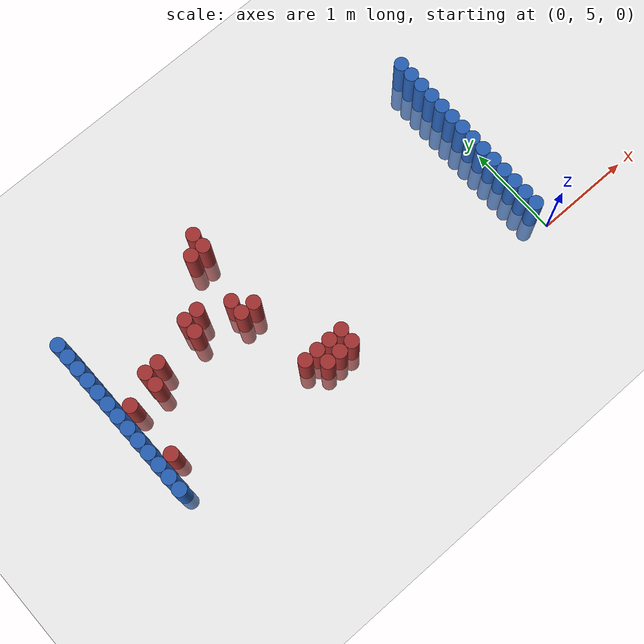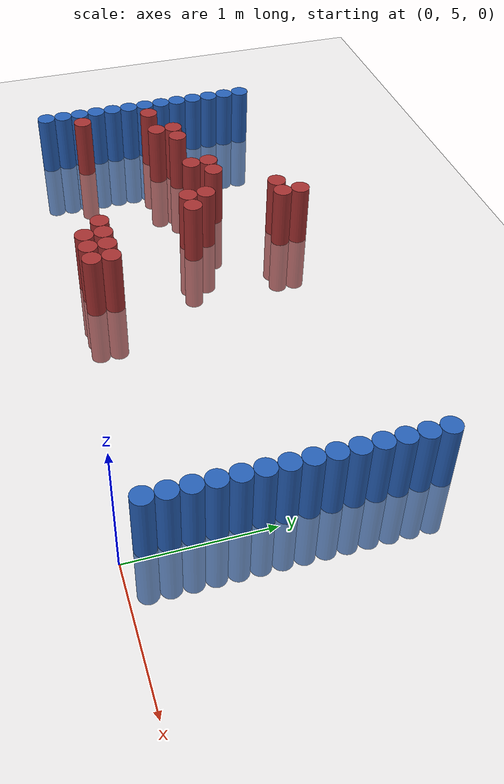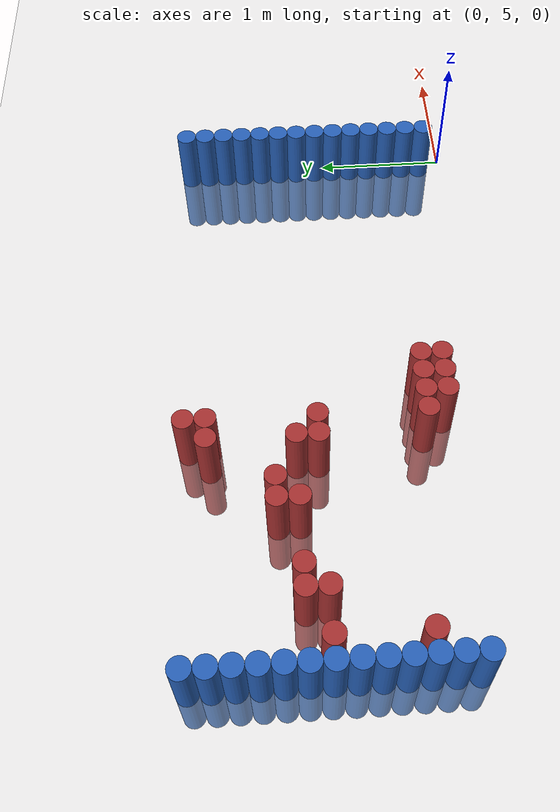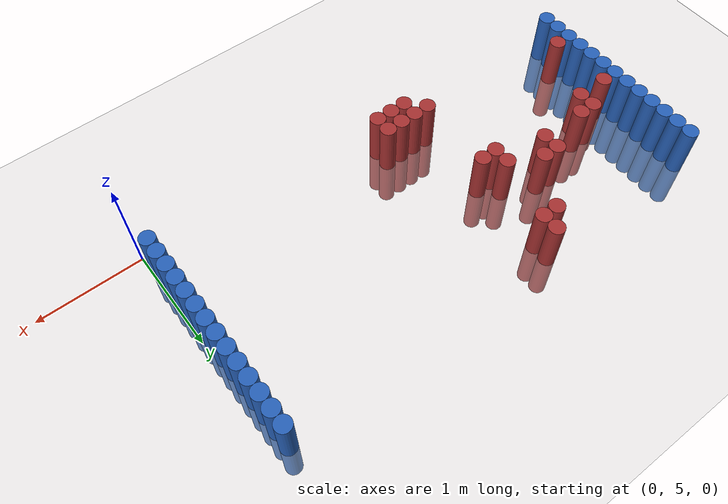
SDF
<sdf version="1.6">
 <world name="world_107">
  <model name="ground_plane">
   <static>1</static>
   <link name="link">
    <collision name="collision">
     <geometry><plane><normal>0 0 1</normal><size>100 100</size></plane></geometry>
     <surface><friction><ode><mu>100</mu><mu2>50</mu2></ode></friction></surface>
    </collision>
    <visual name="visual">
     <cast_shadows>0</cast_shadows>
     <geometry><plane><normal>0 0 1</normal><size>100 100</size></plane></geometry>
     <material>
      <script><uri>file://media/materials/scripts/gazebo.material</uri><name>Gazebo/Grey</name></script>
     </material>
    </visual>
   </link>
  </model>
  <model name="unit_cylinder_97">
   <static>1</static>
   <pose>-4.425000 5.325000 0.000000 0.000000 0.000000 0.000000</pose>
   <link name="link">
    <inertial>
     <mass>1</mass>
     <inertia><ixx>0.145833</ixx><ixy>0</ixy><ixz>0</ixz><iyy>0.145833</iyy><iyz>0</iyz><izz>0.125</izz></inertia>
    </inertial>
    <collision name="collision">
     <geometry><cylinder><radius>0.075000</radius><length>1</length></cylinder></geometry>
    </collision>
    <visual name="visual">
     <geometry><cylinder><radius>0.075000</radius><length>1</length></cylinder></geometry>
     <material>
      <ambient>0.152000 0.379000 0.720000 1</ambient>
      <diffuse>0.152000 0.379000 0.720000 1</diffuse>
     </material>
     <material>
      <script><name>Gazebo/Grey</name><uri>file://media/materials/scripts/gazebo.material</uri></script>
     </material>
    </visual>
   </link>
  </model>
  <model name="unit_cylinder_98">
   <static>1</static>
   <pose>-4.425000 5.475000 0.000000 0.000000 0.000000 0.000000</pose>
   <link name="link">
    <inertial>
     <mass>1</mass>
     <inertia><ixx>0.145833</ixx><ixy>0</ixy><ixz>0</ixz><iyy>0.145833</iyy><iyz>0</iyz><izz>0.125</izz></inertia>
    </inertial>
    <collision name="collision">
     <geometry><cylinder><radius>0.075000</radius><length>1</length></cylinder></geometry>
    </collision>
    <visual name="visual">
     <geometry><cylinder><radius>0.075000</radius><length>1</length></cylinder></geometry>
     <material>
      <ambient>0.152000 0.379000 0.720000 1</ambient>
      <diffuse>0.152000 0.379000 0.720000 1</diffuse>
     </material>
     <material>
      <script><name>Gazebo/Grey</name><uri>file://media/materials/scripts/gazebo.material</uri></script>
     </material>
    </visual>
   </link>
  </model>
  <model name="unit_cylinder_99">
   <static>1</static>
   <pose>-4.425000 5.625000 0.000000 0.000000 0.000000 0.000000</pose>
   <link name="link">
    <inertial>
     <mass>1</mass>
     <inertia><ixx>0.145833</ixx><ixy>0</ixy><ixz>0</ixz><iyy>0.145833</iyy><iyz>0</iyz><izz>0.125</izz></inertia>
    </inertial>
    <collision name="collision">
     <geometry><cylinder><radius>0.075000</radius><length>1</length></cylinder></geometry>
    </collision>
    <visual name="visual">
     <geometry><cylinder><radius>0.075000</radius><length>1</length></cylinder></geometry>
     <material>
      <ambient>0.152000 0.379000 0.720000 1</ambient>
      <diffuse>0.152000 0.379000 0.720000 1</diffuse>
     </material>
     <material>
      <script><name>Gazebo/Grey</name><uri>file://media/materials/scripts/gazebo.material</uri></script>
     </material>
    </visual>
   </link>
  </model>
  <model name="unit_cylinder_100">
   <static>1</static>
   <pose>-4.425000 5.775000 0.000000 0.000000 0.000000 0.000000</pose>
   <link name="link">
    <inertial>
     <mass>1</mass>
     <inertia><ixx>0.145833</ixx><ixy>0</ixy><ixz>0</ixz><iyy>0.145833</iyy><iyz>0</iyz><izz>0.125</izz></inertia>
    </inertial>
    <collision name="collision">
     <geometry><cylinder><radius>0.075000</radius><length>1</length></cylinder></geometry>
    </collision>
    <visual name="visual">
     <geometry><cylinder><radius>0.075000</radius><length>1</length></cylinder></geometry>
     <material>
      <ambient>0.152000 0.379000 0.720000 1</ambient>
      <diffuse>0.152000 0.379000 0.720000 1</diffuse>
     </material>
     <material>
      <script><name>Gazebo/Grey</name><uri>file://media/materials/scripts/gazebo.material</uri></script>
     </material>
    </visual>
   </link>
  </model>
  <model name="unit_cylinder_101">
   <static>1</static>
   <pose>-4.425000 5.925000 0.000000 0.000000 0.000000 0.000000</pose>
   <link name="link">
    <inertial>
     <mass>1</mass>
     <inertia><ixx>0.145833</ixx><ixy>0</ixy><ixz>0</ixz><iyy>0.145833</iyy><iyz>0</iyz><izz>0.125</izz></inertia>
    </inertial>
    <collision name="collision">
     <geometry><cylinder><radius>0.075000</radius><length>1</length></cylinder></geometry>
    </collision>
    <visual name="visual">
     <geometry><cylinder><radius>0.075000</radius><length>1</length></cylinder></geometry>
     <material>
      <ambient>0.152000 0.379000 0.720000 1</ambient>
      <diffuse>0.152000 0.379000 0.720000 1</diffuse>
     </material>
     <material>
      <script><name>Gazebo/Grey</name><uri>file://media/materials/scripts/gazebo.material</uri></script>
     </material>
    </visual>
   </link>
  </model>
  <model name="unit_cylinder_102">
   <static>1</static>
   <pose>-4.425000 6.075000 0.000000 0.000000 0.000000 0.000000</pose>
   <link name="link">
    <inertial>
     <mass>1</mass>
     <inertia><ixx>0.145833</ixx><ixy>0</ixy><ixz>0</ixz><iyy>0.145833</iyy><iyz>0</iyz><izz>0.125</izz></inertia>
    </inertial>
    <collision name="collision">
     <geometry><cylinder><radius>0.075000</radius><length>1</length></cylinder></geometry>
    </collision>
    <visual name="visual">
     <geometry><cylinder><radius>0.075000</radius><length>1</length></cylinder></geometry>
     <material>
      <ambient>0.152000 0.379000 0.720000 1</ambient>
      <diffuse>0.152000 0.379000 0.720000 1</diffuse>
     </material>
     <material>
      <script><name>Gazebo/Grey</name><uri>file://media/materials/scripts/gazebo.material</uri></script>
     </material>
    </visual>
   </link>
  </model>
  <model name="unit_cylinder_103">
   <static>1</static>
   <pose>-4.425000 6.225000 0.000000 0.000000 0.000000 0.000000</pose>
   <link name="link">
    <inertial>
     <mass>1</mass>
     <inertia><ixx>0.145833</ixx><ixy>0</ixy><ixz>0</ixz><iyy>0.145833</iyy><iyz>0</iyz><izz>0.125</izz></inertia>
    </inertial>
    <collision name="collision">
     <geometry><cylinder><radius>0.075000</radius><length>1</length></cylinder></geometry>
    </collision>
    <visual name="visual">
     <geometry><cylinder><radius>0.075000</radius><length>1</length></cylinder></geometry>
     <material>
      <ambient>0.152000 0.379000 0.720000 1</ambient>
      <diffuse>0.152000 0.379000 0.720000 1</diffuse>
     </material>
     <material>
      <script><name>Gazebo/Grey</name><uri>file://media/materials/scripts/gazebo.material</uri></script>
     </material>
    </visual>
   </link>
  </model>
  <model name="unit_cylinder_104">
   <static>1</static>
   <pose>-4.425000 6.375000 0.000000 0.000000 0.000000 0.000000</pose>
   <link name="link">
    <inertial>
     <mass>1</mass>
     <inertia><ixx>0.145833</ixx><ixy>0</ixy><ixz>0</ixz><iyy>0.145833</iyy><iyz>0</iyz><izz>0.125</izz></inertia>
    </inertial>
    <collision name="collision">
     <geometry><cylinder><radius>0.075000</radius><length>1</length></cylinder></geometry>
    </collision>
    <visual name="visual">
     <geometry><cylinder><radius>0.075000</radius><length>1</length></cylinder></geometry>
     <material>
      <ambient>0.152000 0.379000 0.720000 1</ambient>
      <diffuse>0.152000 0.379000 0.720000 1</diffuse>
     </material>
     <material>
      <script><name>Gazebo/Grey</name><uri>file://media/materials/scripts/gazebo.material</uri></script>
     </material>
    </visual>
   </link>
  </model>
  <model name="unit_cylinder_105">
   <static>1</static>
   <pose>-4.425000 6.525000 0.000000 0.000000 0.000000 0.000000</pose>
   <link name="link">
    <inertial>
     <mass>1</mass>
     <inertia><ixx>0.145833</ixx><ixy>0</ixy><ixz>0</ixz><iyy>0.145833</iyy><iyz>0</iyz><izz>0.125</izz></inertia>
    </inertial>
    <collision name="collision">
     <geometry><cylinder><radius>0.075000</radius><length>1</length></cylinder></geometry>
    </collision>
    <visual name="visual">
     <geometry><cylinder><radius>0.075000</radius><length>1</length></cylinder></geometry>
     <material>
      <ambient>0.152000 0.379000 0.720000 1</ambient>
      <diffuse>0.152000 0.379000 0.720000 1</diffuse>
     </material>
     <material>
      <script><name>Gazebo/Grey</name><uri>file://media/materials/scripts/gazebo.material</uri></script>
     </material>
    </visual>
   </link>
  </model>
  <model name="unit_cylinder_106">
   <static>1</static>
   <pose>-4.425000 6.675000 0.000000 0.000000 0.000000 0.000000</pose>
   <link name="link">
    <inertial>
     <mass>1</mass>
     <inertia><ixx>0.145833</ixx><ixy>0</ixy><ixz>0</ixz><iyy>0.145833</iyy><iyz>0</iyz><izz>0.125</izz></inertia>
    </inertial>
    <collision name="collision">
     <geometry><cylinder><radius>0.075000</radius><length>1</length></cylinder></geometry>
    </collision>
    <visual name="visual">
     <geometry><cylinder><radius>0.075000</radius><length>1</length></cylinder></geometry>
     <material>
      <ambient>0.152000 0.379000 0.720000 1</ambient>
      <diffuse>0.152000 0.379000 0.720000 1</diffuse>
     </material>
     <material>
      <script><name>Gazebo/Grey</name><uri>file://media/materials/scripts/gazebo.material</uri></script>
     </material>
    </visual>
   </link>
  </model>
  <model name="unit_cylinder_107">
   <static>1</static>
   <pose>-4.425000 6.825000 0.000000 0.000000 0.000000 0.000000</pose>
   <link name="link">
    <inertial>
     <mass>1</mass>
     <inertia><ixx>0.145833</ixx><ixy>0</ixy><ixz>0</ixz><iyy>0.145833</iyy><iyz>0</iyz><izz>0.125</izz></inertia>
    </inertial>
    <collision name="collision">
     <geometry><cylinder><radius>0.075000</radius><length>1</length></cylinder></geometry>
    </collision>
    <visual name="visual">
     <geometry><cylinder><radius>0.075000</radius><length>1</length></cylinder></geometry>
     <material>
      <ambient>0.152000 0.379000 0.720000 1</ambient>
      <diffuse>0.152000 0.379000 0.720000 1</diffuse>
     </material>
     <material>
      <script><name>Gazebo/Grey</name><uri>file://media/materials/scripts/gazebo.material</uri></script>
     </material>
    </visual>
   </link>
  </model>
  <model name="unit_cylinder_108">
   <static>1</static>
   <pose>-4.425000 6.975000 0.000000 0.000000 0.000000 0.000000</pose>
   <link name="link">
    <inertial>
     <mass>1</mass>
     <inertia><ixx>0.145833</ixx><ixy>0</ixy><ixz>0</ixz><iyy>0.145833</iyy><iyz>0</iyz><izz>0.125</izz></inertia>
    </inertial>
    <collision name="collision">
     <geometry><cylinder><radius>0.075000</radius><length>1</length></cylinder></geometry>
    </collision>
    <visual name="visual">
     <geometry><cylinder><radius>0.075000</radius><length>1</length></cylinder></geometry>
     <material>
      <ambient>0.152000 0.379000 0.720000 1</ambient>
      <diffuse>0.152000 0.379000 0.720000 1</diffuse>
     </material>
     <material>
      <script><name>Gazebo/Grey</name><uri>file://media/materials/scripts/gazebo.material</uri></script>
     </material>
    </visual>
   </link>
  </model>
  <model name="unit_cylinder_109">
   <static>1</static>
   <pose>-4.425000 7.125000 0.000000 0.000000 0.000000 0.000000</pose>
   <link name="link">
    <inertial>
     <mass>1</mass>
     <inertia><ixx>0.145833</ixx><ixy>0</ixy><ixz>0</ixz><iyy>0.145833</iyy><iyz>0</iyz><izz>0.125</izz></inertia>
    </inertial>
    <collision name="collision">
     <geometry><cylinder><radius>0.075000</radius><length>1</length></cylinder></geometry>
    </collision>
    <visual name="visual">
     <geometry><cylinder><radius>0.075000</radius><length>1</length></cylinder></geometry>
     <material>
      <ambient>0.152000 0.379000 0.720000 1</ambient>
      <diffuse>0.152000 0.379000 0.720000 1</diffuse>
     </material>
     <material>
      <script><name>Gazebo/Grey</name><uri>file://media/materials/scripts/gazebo.material</uri></script>
     </material>
    </visual>
   </link>
  </model>
  <model name="unit_cylinder_126">
   <static>1</static>
   <pose>-4.275000 5.625000 0.000000 0.000000 0.000000 0.000000</pose>
   <link name="link">
    <inertial>
     <mass>1</mass>
     <inertia><ixx>0.145833</ixx><ixy>0</ixy><ixz>0</ixz><iyy>0.145833</iyy><iyz>0</iyz><izz>0.125</izz></inertia>
    </inertial>
    <collision name="collision">
     <geometry><cylinder><radius>0.075000</radius><length>1</length></cylinder></geometry>
    </collision>
    <visual name="visual">
     <geometry><cylinder><radius>0.075000</radius><length>1</length></cylinder></geometry>
     <material>
      <ambient>0.648000 0.192000 0.192000 1</ambient>
      <diffuse>0.648000 0.192000 0.192000 1</diffuse>
     </material>
     <material>
      <script><name>Gazebo/Grey</name><uri>file://media/materials/scripts/gazebo.material</uri></script>
     </material>
    </visual>
   </link>
  </model>
  <model name="unit_cylinder_127">
   <static>1</static>
   <pose>-4.275000 6.225000 0.000000 0.000000 0.000000 0.000000</pose>
   <link name="link">
    <inertial>
     <mass>1</mass>
     <inertia><ixx>0.145833</ixx><ixy>0</ixy><ixz>0</ixz><iyy>0.145833</iyy><iyz>0</iyz><izz>0.125</izz></inertia>
    </inertial>
    <collision name="collision">
     <geometry><cylinder><radius>0.075000</radius><length>1</length></cylinder></geometry>
    </collision>
    <visual name="visual">
     <geometry><cylinder><radius>0.075000</radius><length>1</length></cylinder></geometry>
     <material>
      <ambient>0.648000 0.192000 0.192000 1</ambient>
      <diffuse>0.648000 0.192000 0.192000 1</diffuse>
     </material>
     <material>
      <script><name>Gazebo/Grey</name><uri>file://media/materials/scripts/gazebo.material</uri></script>
     </material>
    </visual>
   </link>
  </model>
  <model name="unit_cylinder_132">
   <static>1</static>
   <pose>-3.975000 6.225000 0.000000 0.000000 0.000000 0.000000</pose>
   <link name="link">
    <inertial>
     <mass>1</mass>
     <inertia><ixx>0.145833</ixx><ixy>0</ixy><ixz>0</ixz><iyy>0.145833</iyy><iyz>0</iyz><izz>0.125</izz></inertia>
    </inertial>
    <collision name="collision">
     <geometry><cylinder><radius>0.075000</radius><length>1</length></cylinder></geometry>
    </collision>
    <visual name="visual">
     <geometry><cylinder><radius>0.075000</radius><length>1</length></cylinder></geometry>
     <material>
      <ambient>0.648000 0.192000 0.192000 1</ambient>
      <diffuse>0.648000 0.192000 0.192000 1</diffuse>
     </material>
     <material>
      <script><name>Gazebo/Grey</name><uri>file://media/materials/scripts/gazebo.material</uri></script>
     </material>
    </visual>
   </link>
  </model>
  <model name="unit_cylinder_133">
   <static>1</static>
   <pose>-3.975000 6.375000 0.000000 0.000000 0.000000 0.000000</pose>
   <link name="link">
    <inertial>
     <mass>1</mass>
     <inertia><ixx>0.145833</ixx><ixy>0</ixy><ixz>0</ixz><iyy>0.145833</iyy><iyz>0</iyz><izz>0.125</izz></inertia>
    </inertial>
    <collision name="collision">
     <geometry><cylinder><radius>0.075000</radius><length>1</length></cylinder></geometry>
    </collision>
    <visual name="visual">
     <geometry><cylinder><radius>0.075000</radius><length>1</length></cylinder></geometry>
     <material>
      <ambient>0.648000 0.192000 0.192000 1</ambient>
      <diffuse>0.648000 0.192000 0.192000 1</diffuse>
     </material>
     <material>
      <script><name>Gazebo/Grey</name><uri>file://media/materials/scripts/gazebo.material</uri></script>
     </material>
    </visual>
   </link>
  </model>
  <model name="unit_cylinder_135">
   <static>1</static>
   <pose>-3.825000 6.375000 0.000000 0.000000 0.000000 0.000000</pose>
   <link name="link">
    <inertial>
     <mass>1</mass>
     <inertia><ixx>0.145833</ixx><ixy>0</ixy><ixz>0</ixz><iyy>0.145833</iyy><iyz>0</iyz><izz>0.125</izz></inertia>
    </inertial>
    <collision name="collision">
     <geometry><cylinder><radius>0.075000</radius><length>1</length></cylinder></geometry>
    </collision>
    <visual name="visual">
     <geometry><cylinder><radius>0.075000</radius><length>1</length></cylinder></geometry>
     <material>
      <ambient>0.648000 0.192000 0.192000 1</ambient>
      <diffuse>0.648000 0.192000 0.192000 1</diffuse>
     </material>
     <material>
      <script><name>Gazebo/Grey</name><uri>file://media/materials/scripts/gazebo.material</uri></script>
     </material>
    </visual>
   </link>
  </model>
  <model name="unit_cylinder_136">
   <static>1</static>
   <pose>-3.375000 6.375000 0.000000 0.000000 0.000000 0.000000</pose>
   <link name="link">
    <inertial>
     <mass>1</mass>
     <inertia><ixx>0.145833</ixx><ixy>0</ixy><ixz>0</ixz><iyy>0.145833</iyy><iyz>0</iyz><izz>0.125</izz></inertia>
    </inertial>
    <collision name="collision">
     <geometry><cylinder><radius>0.075000</radius><length>1</length></cylinder></geometry>
    </collision>
    <visual name="visual">
     <geometry><cylinder><radius>0.075000</radius><length>1</length></cylinder></geometry>
     <material>
      <ambient>0.648000 0.192000 0.192000 1</ambient>
      <diffuse>0.648000 0.192000 0.192000 1</diffuse>
     </material>
     <material>
      <script><name>Gazebo/Grey</name><uri>file://media/materials/scripts/gazebo.material</uri></script>
     </material>
    </visual>
   </link>
  </model>
  <model name="unit_cylinder_137">
   <static>1</static>
   <pose>-3.375000 6.525000 0.000000 0.000000 0.000000 0.000000</pose>
   <link name="link">
    <inertial>
     <mass>1</mass>
     <inertia><ixx>0.145833</ixx><ixy>0</ixy><ixz>0</ixz><iyy>0.145833</iyy><iyz>0</iyz><izz>0.125</izz></inertia>
    </inertial>
    <collision name="collision">
     <geometry><cylinder><radius>0.075000</radius><length>1</length></cylinder></geometry>
    </collision>
    <visual name="visual">
     <geometry><cylinder><radius>0.075000</radius><length>1</length></cylinder></geometry>
     <material>
      <ambient>0.648000 0.192000 0.192000 1</ambient>
      <diffuse>0.648000 0.192000 0.192000 1</diffuse>
     </material>
     <material>
      <script><name>Gazebo/Grey</name><uri>file://media/materials/scripts/gazebo.material</uri></script>
     </material>
    </visual>
   </link>
  </model>
  <model name="unit_cylinder_138">
   <static>1</static>
   <pose>-3.225000 6.525000 0.000000 0.000000 0.000000 0.000000</pose>
   <link name="link">
    <inertial>
     <mass>1</mass>
     <inertia><ixx>0.145833</ixx><ixy>0</ixy><ixz>0</ixz><iyy>0.145833</iyy><iyz>0</iyz><izz>0.125</izz></inertia>
    </inertial>
    <collision name="collision">
     <geometry><cylinder><radius>0.075000</radius><length>1</length></cylinder></geometry>
    </collision>
    <visual name="visual">
     <geometry><cylinder><radius>0.075000</radius><length>1</length></cylinder></geometry>
     <material>
      <ambient>0.648000 0.192000 0.192000 1</ambient>
      <diffuse>0.648000 0.192000 0.192000 1</diffuse>
     </material>
     <material>
      <script><name>Gazebo/Grey</name><uri>file://media/materials/scripts/gazebo.material</uri></script>
     </material>
    </visual>
   </link>
  </model>
  <model name="unit_cylinder_139">
   <static>1</static>
   <pose>-2.925000 6.225000 0.000000 0.000000 0.000000 0.000000</pose>
   <link name="link">
    <inertial>
     <mass>1</mass>
     <inertia><ixx>0.145833</ixx><ixy>0</ixy><ixz>0</ixz><iyy>0.145833</iyy><iyz>0</iyz><izz>0.125</izz></inertia>
    </inertial>
    <collision name="collision">
     <geometry><cylinder><radius>0.075000</radius><length>1</length></cylinder></geometry>
    </collision>
    <visual name="visual">
     <geometry><cylinder><radius>0.075000</radius><length>1</length></cylinder></geometry>
     <material>
      <ambient>0.648000 0.192000 0.192000 1</ambient>
      <diffuse>0.648000 0.192000 0.192000 1</diffuse>
     </material>
     <material>
      <script><name>Gazebo/Grey</name><uri>file://media/materials/scripts/gazebo.material</uri></script>
     </material>
    </visual>
   </link>
  </model>
  <model name="unit_cylinder_140">
   <static>1</static>
   <pose>-2.925000 6.375000 0.000000 0.000000 0.000000 0.000000</pose>
   <link name="link">
    <inertial>
     <mass>1</mass>
     <inertia><ixx>0.145833</ixx><ixy>0</ixy><ixz>0</ixz><iyy>0.145833</iyy><iyz>0</iyz><izz>0.125</izz></inertia>
    </inertial>
    <collision name="collision">
     <geometry><cylinder><radius>0.075000</radius><length>1</length></cylinder></geometry>
    </collision>
    <visual name="visual">
     <geometry><cylinder><radius>0.075000</radius><length>1</length></cylinder></geometry>
     <material>
      <ambient>0.648000 0.192000 0.192000 1</ambient>
      <diffuse>0.648000 0.192000 0.192000 1</diffuse>
     </material>
     <material>
      <script><name>Gazebo/Grey</name><uri>file://media/materials/scripts/gazebo.material</uri></script>
     </material>
    </visual>
   </link>
  </model>
  <model name="unit_cylinder_141">
   <static>1</static>
   <pose>-2.925000 6.975000 0.000000 0.000000 0.000000 0.000000</pose>
   <link name="link">
    <inertial>
     <mass>1</mass>
     <inertia><ixx>0.145833</ixx><ixy>0</ixy><ixz>0</ixz><iyy>0.145833</iyy><iyz>0</iyz><izz>0.125</izz></inertia>
    </inertial>
    <collision name="collision">
     <geometry><cylinder><radius>0.075000</radius><length>1</length></cylinder></geometry>
    </collision>
    <visual name="visual">
     <geometry><cylinder><radius>0.075000</radius><length>1</length></cylinder></geometry>
     <material>
      <ambient>0.648000 0.192000 0.192000 1</ambient>
      <diffuse>0.648000 0.192000 0.192000 1</diffuse>
     </material>
     <material>
      <script><name>Gazebo/Grey</name><uri>file://media/materials/scripts/gazebo.material</uri></script>
     </material>
    </visual>
   </link>
  </model>
  <model name="unit_cylinder_142">
   <static>1</static>
   <pose>-2.775000 5.475000 0.000000 0.000000 0.000000 0.000000</pose>
   <link name="link">
    <inertial>
     <mass>1</mass>
     <inertia><ixx>0.145833</ixx><ixy>0</ixy><ixz>0</ixz><iyy>0.145833</iyy><iyz>0</iyz><izz>0.125</izz></inertia>
    </inertial>
    <collision name="collision">
     <geometry><cylinder><radius>0.075000</radius><length>1</length></cylinder></geometry>
    </collision>
    <visual name="visual">
     <geometry><cylinder><radius>0.075000</radius><length>1</length></cylinder></geometry>
     <material>
      <ambient>0.648000 0.192000 0.192000 1</ambient>
      <diffuse>0.648000 0.192000 0.192000 1</diffuse>
     </material>
     <material>
      <script><name>Gazebo/Grey</name><uri>file://media/materials/scripts/gazebo.material</uri></script>
     </material>
    </visual>
   </link>
  </model>
  <model name="unit_cylinder_143">
   <static>1</static>
   <pose>-2.775000 6.225000 0.000000 0.000000 0.000000 0.000000</pose>
   <link name="link">
    <inertial>
     <mass>1</mass>
     <inertia><ixx>0.145833</ixx><ixy>0</ixy><ixz>0</ixz><iyy>0.145833</iyy><iyz>0</iyz><izz>0.125</izz></inertia>
    </inertial>
    <collision name="collision">
     <geometry><cylinder><radius>0.075000</radius><length>1</length></cylinder></geometry>
    </collision>
    <visual name="visual">
     <geometry><cylinder><radius>0.075000</radius><length>1</length></cylinder></geometry>
     <material>
      <ambient>0.648000 0.192000 0.192000 1</ambient>
      <diffuse>0.648000 0.192000 0.192000 1</diffuse>
     </material>
     <material>
      <script><name>Gazebo/Grey</name><uri>file://media/materials/scripts/gazebo.material</uri></script>
     </material>
    </visual>
   </link>
  </model>
  <model name="unit_cylinder_144">
   <static>1</static>
   <pose>-2.775000 6.975000 0.000000 0.000000 0.000000 0.000000</pose>
   <link name="link">
    <inertial>
     <mass>1</mass>
     <inertia><ixx>0.145833</ixx><ixy>0</ixy><ixz>0</ixz><iyy>0.145833</iyy><iyz>0</iyz><izz>0.125</izz></inertia>
    </inertial>
    <collision name="collision">
     <geometry><cylinder><radius>0.075000</radius><length>1</length></cylinder></geometry>
    </collision>
    <visual name="visual">
     <geometry><cylinder><radius>0.075000</radius><length>1</length></cylinder></geometry>
     <material>
      <ambient>0.648000 0.192000 0.192000 1</ambient>
      <diffuse>0.648000 0.192000 0.192000 1</diffuse>
     </material>
     <material>
      <script><name>Gazebo/Grey</name><uri>file://media/materials/scripts/gazebo.material</uri></script>
     </material>
    </visual>
   </link>
  </model>
  <model name="unit_cylinder_145">
   <static>1</static>
   <pose>-2.775000 7.125000 0.000000 0.000000 0.000000 0.000000</pose>
   <link name="link">
    <inertial>
     <mass>1</mass>
     <inertia><ixx>0.145833</ixx><ixy>0</ixy><ixz>0</ixz><iyy>0.145833</iyy><iyz>0</iyz><izz>0.125</izz></inertia>
    </inertial>
    <collision name="collision">
     <geometry><cylinder><radius>0.075000</radius><length>1</length></cylinder></geometry>
    </collision>
    <visual name="visual">
     <geometry><cylinder><radius>0.075000</radius><length>1</length></cylinder></geometry>
     <material>
      <ambient>0.648000 0.192000 0.192000 1</ambient>
      <diffuse>0.648000 0.192000 0.192000 1</diffuse>
     </material>
     <material>
      <script><name>Gazebo/Grey</name><uri>file://media/materials/scripts/gazebo.material</uri></script>
     </material>
    </visual>
   </link>
  </model>
  <model name="unit_cylinder_146">
   <static>1</static>
   <pose>-2.625000 5.325000 0.000000 0.000000 0.000000 0.000000</pose>
   <link name="link">
    <inertial>
     <mass>1</mass>
     <inertia><ixx>0.145833</ixx><ixy>0</ixy><ixz>0</ixz><iyy>0.145833</iyy><iyz>0</iyz><izz>0.125</izz></inertia>
    </inertial>
    <collision name="collision">
     <geometry><cylinder><radius>0.075000</radius><length>1</length></cylinder></geometry>
    </collision>
    <visual name="visual">
     <geometry><cylinder><radius>0.075000</radius><length>1</length></cylinder></geometry>
     <material>
      <ambient>0.648000 0.192000 0.192000 1</ambient>
      <diffuse>0.648000 0.192000 0.192000 1</diffuse>
     </material>
     <material>
      <script><name>Gazebo/Grey</name><uri>file://media/materials/scripts/gazebo.material</uri></script>
     </material>
    </visual>
   </link>
  </model>
  <model name="unit_cylinder_147">
   <static>1</static>
   <pose>-2.625000 5.475000 0.000000 0.000000 0.000000 0.000000</pose>
   <link name="link">
    <inertial>
     <mass>1</mass>
     <inertia><ixx>0.145833</ixx><ixy>0</ixy><ixz>0</ixz><iyy>0.145833</iyy><iyz>0</iyz><izz>0.125</izz></inertia>
    </inertial>
    <collision name="collision">
     <geometry><cylinder><radius>0.075000</radius><length>1</length></cylinder></geometry>
    </collision>
    <visual name="visual">
     <geometry><cylinder><radius>0.075000</radius><length>1</length></cylinder></geometry>
     <material>
      <ambient>0.648000 0.192000 0.192000 1</ambient>
      <diffuse>0.648000 0.192000 0.192000 1</diffuse>
     </material>
     <material>
      <script><name>Gazebo/Grey</name><uri>file://media/materials/scripts/gazebo.material</uri></script>
     </material>
    </visual>
   </link>
  </model>
  <model name="unit_cylinder_149">
   <static>1</static>
   <pose>-2.475000 5.325000 0.000000 0.000000 0.000000 0.000000</pose>
   <link name="link">
    <inertial>
     <mass>1</mass>
     <inertia><ixx>0.145833</ixx><ixy>0</ixy><ixz>0</ixz><iyy>0.145833</iyy><iyz>0</iyz><izz>0.125</izz></inertia>
    </inertial>
    <collision name="collision">
     <geometry><cylinder><radius>0.075000</radius><length>1</length></cylinder></geometry>
    </collision>
    <visual name="visual">
     <geometry><cylinder><radius>0.075000</radius><length>1</length></cylinder></geometry>
     <material>
      <ambient>0.648000 0.192000 0.192000 1</ambient>
      <diffuse>0.648000 0.192000 0.192000 1</diffuse>
     </material>
     <material>
      <script><name>Gazebo/Grey</name><uri>file://media/materials/scripts/gazebo.material</uri></script>
     </material>
    </visual>
   </link>
  </model>
  <model name="unit_cylinder_150">
   <static>1</static>
   <pose>-2.475000 5.475000 0.000000 0.000000 0.000000 0.000000</pose>
   <link name="link">
    <inertial>
     <mass>1</mass>
     <inertia><ixx>0.145833</ixx><ixy>0</ixy><ixz>0</ixz><iyy>0.145833</iyy><iyz>0</iyz><izz>0.125</izz></inertia>
    </inertial>
    <collision name="collision">
     <geometry><cylinder><radius>0.075000</radius><length>1</length></cylinder></geometry>
    </collision>
    <visual name="visual">
     <geometry><cylinder><radius>0.075000</radius><length>1</length></cylinder></geometry>
     <material>
      <ambient>0.648000 0.192000 0.192000 1</ambient>
      <diffuse>0.648000 0.192000 0.192000 1</diffuse>
     </material>
     <material>
      <script><name>Gazebo/Grey</name><uri>file://media/materials/scripts/gazebo.material</uri></script>
     </material>
    </visual>
   </link>
  </model>
  <model name="unit_cylinder_152">
   <static>1</static>
   <pose>-2.325000 5.325000 0.000000 0.000000 0.000000 0.000000</pose>
   <link name="link">
    <inertial>
     <mass>1</mass>
     <inertia><ixx>0.145833</ixx><ixy>0</ixy><ixz>0</ixz><iyy>0.145833</iyy><iyz>0</iyz><izz>0.125</izz></inertia>
    </inertial>
    <collision name="collision">
     <geometry><cylinder><radius>0.075000</radius><length>1</length></cylinder></geometry>
    </collision>
    <visual name="visual">
     <geometry><cylinder><radius>0.075000</radius><length>1</length></cylinder></geometry>
     <material>
      <ambient>0.648000 0.192000 0.192000 1</ambient>
      <diffuse>0.648000 0.192000 0.192000 1</diffuse>
     </material>
     <material>
      <script><name>Gazebo/Grey</name><uri>file://media/materials/scripts/gazebo.material</uri></script>
     </material>
    </visual>
   </link>
  </model>
  <model name="unit_cylinder_153">
   <static>1</static>
   <pose>-2.325000 5.475000 0.000000 0.000000 0.000000 0.000000</pose>
   <link name="link">
    <inertial>
     <mass>1</mass>
     <inertia><ixx>0.145833</ixx><ixy>0</ixy><ixz>0</ixz><iyy>0.145833</iyy><iyz>0</iyz><izz>0.125</izz></inertia>
    </inertial>
    <collision name="collision">
     <geometry><cylinder><radius>0.075000</radius><length>1</length></cylinder></geometry>
    </collision>
    <visual name="visual">
     <geometry><cylinder><radius>0.075000</radius><length>1</length></cylinder></geometry>
     <material>
      <ambient>0.648000 0.192000 0.192000 1</ambient>
      <diffuse>0.648000 0.192000 0.192000 1</diffuse>
     </material>
     <material>
      <script><name>Gazebo/Grey</name><uri>file://media/materials/scripts/gazebo.material</uri></script>
     </material>
    </visual>
   </link>
  </model>
  <model name="unit_cylinder_163">
   <static>1</static>
   <pose>-0.075000 5.175000 0.000000 0.000000 0.000000 0.000000</pose>
   <link name="link">
    <inertial>
     <mass>1</mass>
     <inertia><ixx>0.145833</ixx><ixy>0</ixy><ixz>0</ixz><iyy>0.145833</iyy><iyz>0</iyz><izz>0.125</izz></inertia>
    </inertial>
    <collision name="collision">
     <geometry><cylinder><radius>0.075000</radius><length>1</length></cylinder></geometry>
    </collision>
    <visual name="visual">
     <geometry><cylinder><radius>0.075000</radius><length>1</length></cylinder></geometry>
     <material>
      <ambient>0.152000 0.379000 0.720000 1</ambient>
      <diffuse>0.152000 0.379000 0.720000 1</diffuse>
     </material>
     <material>
      <script><name>Gazebo/Grey</name><uri>file://media/materials/scripts/gazebo.material</uri></script>
     </material>
    </visual>
   </link>
  </model>
  <model name="unit_cylinder_164">
   <static>1</static>
   <pose>-0.075000 5.325000 0.000000 0.000000 0.000000 0.000000</pose>
   <link name="link">
    <inertial>
     <mass>1</mass>
     <inertia><ixx>0.145833</ixx><ixy>0</ixy><ixz>0</ixz><iyy>0.145833</iyy><iyz>0</iyz><izz>0.125</izz></inertia>
    </inertial>
    <collision name="collision">
     <geometry><cylinder><radius>0.075000</radius><length>1</length></cylinder></geometry>
    </collision>
    <visual name="visual">
     <geometry><cylinder><radius>0.075000</radius><length>1</length></cylinder></geometry>
     <material>
      <ambient>0.152000 0.379000 0.720000 1</ambient>
      <diffuse>0.152000 0.379000 0.720000 1</diffuse>
     </material>
     <material>
      <script><name>Gazebo/Grey</name><uri>file://media/materials/scripts/gazebo.material</uri></script>
     </material>
    </visual>
   </link>
  </model>
  <model name="unit_cylinder_165">
   <static>1</static>
   <pose>-0.075000 5.475000 0.000000 0.000000 0.000000 0.000000</pose>
   <link name="link">
    <inertial>
     <mass>1</mass>
     <inertia><ixx>0.145833</ixx><ixy>0</ixy><ixz>0</ixz><iyy>0.145833</iyy><iyz>0</iyz><izz>0.125</izz></inertia>
    </inertial>
    <collision name="collision">
     <geometry><cylinder><radius>0.075000</radius><length>1</length></cylinder></geometry>
    </collision>
    <visual name="visual">
     <geometry><cylinder><radius>0.075000</radius><length>1</length></cylinder></geometry>
     <material>
      <ambient>0.152000 0.379000 0.720000 1</ambient>
      <diffuse>0.152000 0.379000 0.720000 1</diffuse>
     </material>
     <material>
      <script><name>Gazebo/Grey</name><uri>file://media/materials/scripts/gazebo.material</uri></script>
     </material>
    </visual>
   </link>
  </model>
  <model name="unit_cylinder_166">
   <static>1</static>
   <pose>-0.075000 5.625000 0.000000 0.000000 0.000000 0.000000</pose>
   <link name="link">
    <inertial>
     <mass>1</mass>
     <inertia><ixx>0.145833</ixx><ixy>0</ixy><ixz>0</ixz><iyy>0.145833</iyy><iyz>0</iyz><izz>0.125</izz></inertia>
    </inertial>
    <collision name="collision">
     <geometry><cylinder><radius>0.075000</radius><length>1</length></cylinder></geometry>
    </collision>
    <visual name="visual">
     <geometry><cylinder><radius>0.075000</radius><length>1</length></cylinder></geometry>
     <material>
      <ambient>0.152000 0.379000 0.720000 1</ambient>
      <diffuse>0.152000 0.379000 0.720000 1</diffuse>
     </material>
     <material>
      <script><name>Gazebo/Grey</name><uri>file://media/materials/scripts/gazebo.material</uri></script>
     </material>
    </visual>
   </link>
  </model>
  <model name="unit_cylinder_167">
   <static>1</static>
   <pose>-0.075000 5.775000 0.000000 0.000000 0.000000 0.000000</pose>
   <link name="link">
    <inertial>
     <mass>1</mass>
     <inertia><ixx>0.145833</ixx><ixy>0</ixy><ixz>0</ixz><iyy>0.145833</iyy><iyz>0</iyz><izz>0.125</izz></inertia>
    </inertial>
    <collision name="collision">
     <geometry><cylinder><radius>0.075000</radius><length>1</length></cylinder></geometry>
    </collision>
    <visual name="visual">
     <geometry><cylinder><radius>0.075000</radius><length>1</length></cylinder></geometry>
     <material>
      <ambient>0.152000 0.379000 0.720000 1</ambient>
      <diffuse>0.152000 0.379000 0.720000 1</diffuse>
     </material>
     <material>
      <script><name>Gazebo/Grey</name><uri>file://media/materials/scripts/gazebo.material</uri></script>
     </material>
    </visual>
   </link>
  </model>
  <model name="unit_cylinder_168">
   <static>1</static>
   <pose>-0.075000 5.925000 0.000000 0.000000 0.000000 0.000000</pose>
   <link name="link">
    <inertial>
     <mass>1</mass>
     <inertia><ixx>0.145833</ixx><ixy>0</ixy><ixz>0</ixz><iyy>0.145833</iyy><iyz>0</iyz><izz>0.125</izz></inertia>
    </inertial>
    <collision name="collision">
     <geometry><cylinder><radius>0.075000</radius><length>1</length></cylinder></geometry>
    </collision>
    <visual name="visual">
     <geometry><cylinder><radius>0.075000</radius><length>1</length></cylinder></geometry>
     <material>
      <ambient>0.152000 0.379000 0.720000 1</ambient>
      <diffuse>0.152000 0.379000 0.720000 1</diffuse>
     </material>
     <material>
      <script><name>Gazebo/Grey</name><uri>file://media/materials/scripts/gazebo.material</uri></script>
     </material>
    </visual>
   </link>
  </model>
  <model name="unit_cylinder_169">
   <static>1</static>
   <pose>-0.075000 6.075000 0.000000 0.000000 0.000000 0.000000</pose>
   <link name="link">
    <inertial>
     <mass>1</mass>
     <inertia><ixx>0.145833</ixx><ixy>0</ixy><ixz>0</ixz><iyy>0.145833</iyy><iyz>0</iyz><izz>0.125</izz></inertia>
    </inertial>
    <collision name="collision">
     <geometry><cylinder><radius>0.075000</radius><length>1</length></cylinder></geometry>
    </collision>
    <visual name="visual">
     <geometry><cylinder><radius>0.075000</radius><length>1</length></cylinder></geometry>
     <material>
      <ambient>0.152000 0.379000 0.720000 1</ambient>
      <diffuse>0.152000 0.379000 0.720000 1</diffuse>
     </material>
     <material>
      <script><name>Gazebo/Grey</name><uri>file://media/materials/scripts/gazebo.material</uri></script>
     </material>
    </visual>
   </link>
  </model>
  <model name="unit_cylinder_170">
   <static>1</static>
   <pose>-0.075000 6.225000 0.000000 0.000000 0.000000 0.000000</pose>
   <link name="link">
    <inertial>
     <mass>1</mass>
     <inertia><ixx>0.145833</ixx><ixy>0</ixy><ixz>0</ixz><iyy>0.145833</iyy><iyz>0</iyz><izz>0.125</izz></inertia>
    </inertial>
    <collision name="collision">
     <geometry><cylinder><radius>0.075000</radius><length>1</length></cylinder></geometry>
    </collision>
    <visual name="visual">
     <geometry><cylinder><radius>0.075000</radius><length>1</length></cylinder></geometry>
     <material>
      <ambient>0.152000 0.379000 0.720000 1</ambient>
      <diffuse>0.152000 0.379000 0.720000 1</diffuse>
     </material>
     <material>
      <script><name>Gazebo/Grey</name><uri>file://media/materials/scripts/gazebo.material</uri></script>
     </material>
    </visual>
   </link>
  </model>
  <model name="unit_cylinder_171">
   <static>1</static>
   <pose>-0.075000 6.375000 0.000000 0.000000 0.000000 0.000000</pose>
   <link name="link">
    <inertial>
     <mass>1</mass>
     <inertia><ixx>0.145833</ixx><ixy>0</ixy><ixz>0</ixz><iyy>0.145833</iyy><iyz>0</iyz><izz>0.125</izz></inertia>
    </inertial>
    <collision name="collision">
     <geometry><cylinder><radius>0.075000</radius><length>1</length></cylinder></geometry>
    </collision>
    <visual name="visual">
     <geometry><cylinder><radius>0.075000</radius><length>1</length></cylinder></geometry>
     <material>
      <ambient>0.152000 0.379000 0.720000 1</ambient>
      <diffuse>0.152000 0.379000 0.720000 1</diffuse>
     </material>
     <material>
      <script><name>Gazebo/Grey</name><uri>file://media/materials/scripts/gazebo.material</uri></script>
     </material>
    </visual>
   </link>
  </model>
  <model name="unit_cylinder_172">
   <static>1</static>
   <pose>-0.075000 6.525000 0.000000 0.000000 0.000000 0.000000</pose>
   <link name="link">
    <inertial>
     <mass>1</mass>
     <inertia><ixx>0.145833</ixx><ixy>0</ixy><ixz>0</ixz><iyy>0.145833</iyy><iyz>0</iyz><izz>0.125</izz></inertia>
    </inertial>
    <collision name="collision">
     <geometry><cylinder><radius>0.075000</radius><length>1</length></cylinder></geometry>
    </collision>
    <visual name="visual">
     <geometry><cylinder><radius>0.075000</radius><length>1</length></cylinder></geometry>
     <material>
      <ambient>0.152000 0.379000 0.720000 1</ambient>
      <diffuse>0.152000 0.379000 0.720000 1</diffuse>
     </material>
     <material>
      <script><name>Gazebo/Grey</name><uri>file://media/materials/scripts/gazebo.material</uri></script>
     </material>
    </visual>
   </link>
  </model>
  <model name="unit_cylinder_173">
   <static>1</static>
   <pose>-0.075000 6.675000 0.000000 0.000000 0.000000 0.000000</pose>
   <link name="link">
    <inertial>
     <mass>1</mass>
     <inertia><ixx>0.145833</ixx><ixy>0</ixy><ixz>0</ixz><iyy>0.145833</iyy><iyz>0</iyz><izz>0.125</izz></inertia>
    </inertial>
    <collision name="collision">
     <geometry><cylinder><radius>0.075000</radius><length>1</length></cylinder></geometry>
    </collision>
    <visual name="visual">
     <geometry><cylinder><radius>0.075000</radius><length>1</length></cylinder></geometry>
     <material>
      <ambient>0.152000 0.379000 0.720000 1</ambient>
      <diffuse>0.152000 0.379000 0.720000 1</diffuse>
     </material>
     <material>
      <script><name>Gazebo/Grey</name><uri>file://media/materials/scripts/gazebo.material</uri></script>
     </material>
    </visual>
   </link>
  </model>
  <model name="unit_cylinder_174">
   <static>1</static>
   <pose>-0.075000 6.825000 0.000000 0.000000 0.000000 0.000000</pose>
   <link name="link">
    <inertial>
     <mass>1</mass>
     <inertia><ixx>0.145833</ixx><ixy>0</ixy><ixz>0</ixz><iyy>0.145833</iyy><iyz>0</iyz><izz>0.125</izz></inertia>
    </inertial>
    <collision name="collision">
     <geometry><cylinder><radius>0.075000</radius><length>1</length></cylinder></geometry>
    </collision>
    <visual name="visual">
     <geometry><cylinder><radius>0.075000</radius><length>1</length></cylinder></geometry>
     <material>
      <ambient>0.152000 0.379000 0.720000 1</ambient>
      <diffuse>0.152000 0.379000 0.720000 1</diffuse>
     </material>
     <material>
      <script><name>Gazebo/Grey</name><uri>file://media/materials/scripts/gazebo.material</uri></script>
     </material>
    </visual>
   </link>
  </model>
  <model name="unit_cylinder_175">
   <static>1</static>
   <pose>-0.075000 6.975000 0.000000 0.000000 0.000000 0.000000</pose>
   <link name="link">
    <inertial>
     <mass>1</mass>
     <inertia><ixx>0.145833</ixx><ixy>0</ixy><ixz>0</ixz><iyy>0.145833</iyy><iyz>0</iyz><izz>0.125</izz></inertia>
    </inertial>
    <collision name="collision">
     <geometry><cylinder><radius>0.075000</radius><length>1</length></cylinder></geometry>
    </collision>
    <visual name="visual">
     <geometry><cylinder><radius>0.075000</radius><length>1</length></cylinder></geometry>
     <material>
      <ambient>0.152000 0.379000 0.720000 1</ambient>
      <diffuse>0.152000 0.379000 0.720000 1</diffuse>
     </material>
     <material>
      <script><name>Gazebo/Grey</name><uri>file://media/materials/scripts/gazebo.material</uri></script>
     </material>
    </visual>
   </link>
  </model>
  <model name="unit_cylinder_176">
   <static>1</static>
   <pose>-0.075000 7.125000 0.000000 0.000000 0.000000 0.000000</pose>
   <link name="link">
    <inertial>
     <mass>1</mass>
     <inertia><ixx>0.145833</ixx><ixy>0</ixy><ixz>0</ixz><iyy>0.145833</iyy><iyz>0</iyz><izz>0.125</izz></inertia>
    </inertial>
    <collision name="collision">
     <geometry><cylinder><radius>0.075000</radius><length>1</length></cylinder></geometry>
    </collision>
    <visual name="visual">
     <geometry><cylinder><radius>0.075000</radius><length>1</length></cylinder></geometry>
     <material>
      <ambient>0.152000 0.379000 0.720000 1</ambient>
      <diffuse>0.152000 0.379000 0.720000 1</diffuse>
     </material>
     <material>
      <script><name>Gazebo/Grey</name><uri>file://media/materials/scripts/gazebo.material</uri></script>
     </material>
    </visual>
   </link>
  </model>
 </world>
</sdf>
